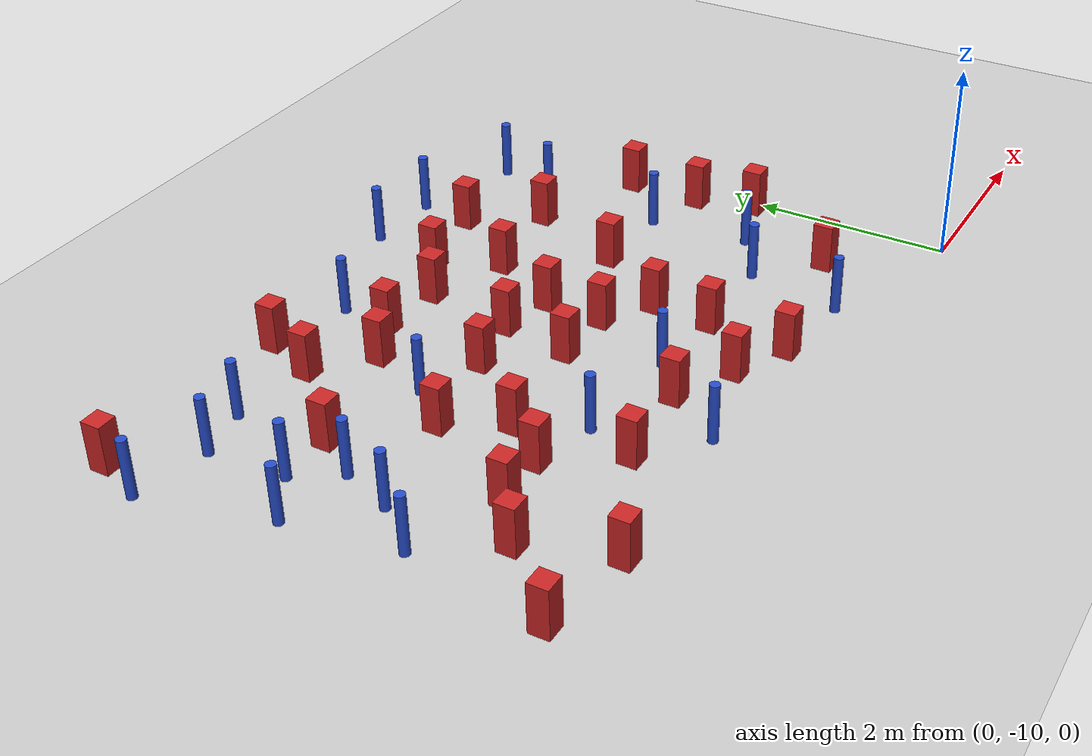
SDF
<sdf version="1.6">
 <world name="default">
  <model name="ground_plane">
   <static>1</static>
   <link name="link">
    <collision name="collision">
     <geometry><plane><normal>0 0 1</normal><size>100 100</size></plane></geometry>
     <surface><friction><ode><mu>100</mu><mu2>50</mu2></ode></friction></surface>
    </collision>
    <visual name="visual">
     <cast_shadows>0</cast_shadows>
     <geometry><plane><normal>0 0 1</normal><size>100 100</size></plane></geometry>
     <material>
      <ambient>1.0 1.0 1.0 1.0</ambient>
      <diffuse>0.8 0.8 0.8 1.0</diffuse>
      <specular>0.01 0.01 0.01 1.000000</specular>
     </material>
    </visual>
   </link>
  </model>
  <model name="square_post_obstacle1">
   <static>true</static>
   <pose>-6.61234218189 -9.25222904209 -6.11067671241e-07 -5.50515727128e-06 -8.79689657224e-07 2.37013304536e-05</pose>
   <link name="link">
    <pose>0 0 0.25 0 -0 0</pose>
    <inertial>
     <mass>100</mass>
     <inertia>
      <ixx>0.166667</ixx>
      <ixy>0</ixy>
      <ixz>0</ixz>
      <iyy>0.166667</iyy>
      <iyz>0</iyz>
      <izz>0.166667</izz>
     </inertia>
    </inertial>
    <collision name="collision"><geometry><box><size>.2 .2 .5</size></box></geometry></collision>
    <visual name="visual">
     <geometry><box><size>.2 .2 .5</size></box></geometry>
     <material>
      <script><name>Gazebo/Red</name><uri>file://media/materials/scripts/gazebo.material</uri></script>
     </material>
    </visual>
   </link>
  </model>
  <model name="square_post_obstacle4">
   <static>true</static>
   <pose>-3.96534316025 -6.98792957776 -6.11067671241e-07 -5.50515727128e-06 -8.79689657224e-07 2.37013304536e-05</pose>
   <link name="link">
    <pose>0 0 0.25 0 -0 0</pose>
    <inertial>
     <mass>100</mass>
     <inertia>
      <ixx>0.166667</ixx>
      <ixy>0</ixy>
      <ixz>0</ixz>
      <iyy>0.166667</iyy>
      <iyz>0</iyz>
      <izz>0.166667</izz>
     </inertia>
    </inertial>
    <collision name="collision"><geometry><box><size>.2 .2 .5</size></box></geometry></collision>
    <visual name="visual">
     <geometry><box><size>.2 .2 .5</size></box></geometry>
     <material>
      <script><name>Gazebo/Red</name><uri>file://media/materials/scripts/gazebo.material</uri></script>
     </material>
    </visual>
   </link>
  </model>
  <model name="pole_obstacle10">
   <static>true</static>
   <pose>-3.80866569778 -5.33983282003 -9.47619616065e-06 5.49618799738e-07 2.3631041406e-07 -1.55090534801e-07</pose>
   <link name="link">
    <pose>0 0 0.3 0 -0 0</pose>
    <inertial>
     <mass>1</mass>
     <inertia><ixx>0.145833</ixx><ixy>0</ixy><ixz>0</ixz><iyy>0.145833</iyy><iyz>0</iyz><izz>0.125</izz></inertia>
    </inertial>
    <collision name="collision">
     <geometry><cylinder><radius>0.05</radius><length>.6</length></cylinder></geometry>
    </collision>
    <visual name="visual">
     <geometry><cylinder><radius>0.05</radius><length>.6</length></cylinder></geometry>
     <material>
      <script><name>Gazebo/Blue</name><uri>file://media/materials/scripts/gazebo.material</uri></script>
     </material>
    </visual>
   </link>
  </model>
  <model name="square_post_obstacle9">
   <static>true</static>
   <pose>-2.40884904298 -6.25458285325 -6.11067671241e-07 -5.50515727128e-06 -8.79689657224e-07 2.37013304536e-05</pose>
   <link name="link">
    <pose>0 0 0.25 0 -0 0</pose>
    <inertial>
     <mass>100</mass>
     <inertia>
      <ixx>0.166667</ixx>
      <ixy>0</ixy>
      <ixz>0</ixz>
      <iyy>0.166667</iyy>
      <iyz>0</iyz>
      <izz>0.166667</izz>
     </inertia>
    </inertial>
    <collision name="collision"><geometry><box><size>.2 .2 .5</size></box></geometry></collision>
    <visual name="visual">
     <geometry><box><size>.2 .2 .5</size></box></geometry>
     <material>
      <script><name>Gazebo/Red</name><uri>file://media/materials/scripts/gazebo.material</uri></script>
     </material>
    </visual>
   </link>
  </model>
  <model name="pole_obstacle13">
   <static>true</static>
   <pose>-1.35421657662 -8.49732423744 -9.47619616065e-06 5.49618799737e-07 2.36310414046e-07 -1.55090534809e-07</pose>
   <link name="link">
    <pose>0 0 0.3 0 -0 0</pose>
    <inertial>
     <mass>1</mass>
     <inertia><ixx>0.145833</ixx><ixy>0</ixy><ixz>0</ixz><iyy>0.145833</iyy><iyz>0</iyz><izz>0.125</izz></inertia>
    </inertial>
    <collision name="collision">
     <geometry><cylinder><radius>0.05</radius><length>.6</length></cylinder></geometry>
    </collision>
    <visual name="visual">
     <geometry><cylinder><radius>0.05</radius><length>.6</length></cylinder></geometry>
     <material>
      <script><name>Gazebo/Blue</name><uri>file://media/materials/scripts/gazebo.material</uri></script>
     </material>
    </visual>
   </link>
  </model>
  <model name="pole_obstacle14">
   <static>true</static>
   <pose>-0.848660396784 -5.84715833143 -9.47619616065e-06 5.49618799737e-07 2.36310414065e-07 -1.55090534796e-07</pose>
   <link name="link">
    <pose>0 0 0.3 0 -0 0</pose>
    <inertial>
     <mass>1</mass>
     <inertia><ixx>0.145833</ixx><ixy>0</ixy><ixz>0</ixz><iyy>0.145833</iyy><iyz>0</iyz><izz>0.125</izz></inertia>
    </inertial>
    <collision name="collision">
     <geometry><cylinder><radius>0.05</radius><length>.6</length></cylinder></geometry>
    </collision>
    <visual name="visual">
     <geometry><cylinder><radius>0.05</radius><length>.6</length></cylinder></geometry>
     <material>
      <script><name>Gazebo/Blue</name><uri>file://media/materials/scripts/gazebo.material</uri></script>
     </material>
    </visual>
   </link>
  </model>
  <model name="square_post_obstacle18">
   <static>true</static>
   <pose>-2.97778106963 -9.07731967255 -6.11067671241e-07 -5.50515727128e-06 -8.79689657224e-07 2.37013304536e-05</pose>
   <link name="link">
    <pose>0 0 0.25 0 -0 0</pose>
    <inertial>
     <mass>100</mass>
     <inertia>
      <ixx>0.166667</ixx>
      <ixy>0</ixy>
      <ixz>0</ixz>
      <iyy>0.166667</iyy>
      <iyz>0</iyz>
      <izz>0.166667</izz>
     </inertia>
    </inertial>
    <collision name="collision"><geometry><box><size>.2 .2 .5</size></box></geometry></collision>
    <visual name="visual">
     <geometry><box><size>.2 .2 .5</size></box></geometry>
     <material>
      <script><name>Gazebo/Red</name><uri>file://media/materials/scripts/gazebo.material</uri></script>
     </material>
    </visual>
   </link>
  </model>
  <model name="square_post_obstacle19">
   <static>true</static>
   <pose>-2.33895949297 -7.9182587723 -6.11067671241e-07 -5.50515727128e-06 -8.79689657224e-07 2.37013304536e-05</pose>
   <link name="link">
    <pose>0 0 0.25 0 -0 0</pose>
    <inertial>
     <mass>100</mass>
     <inertia>
      <ixx>0.166667</ixx>
      <ixy>0</ixy>
      <ixz>0</ixz>
      <iyy>0.166667</iyy>
      <iyz>0</iyz>
      <izz>0.166667</izz>
     </inertia>
    </inertial>
    <collision name="collision"><geometry><box><size>.2 .2 .5</size></box></geometry></collision>
    <visual name="visual">
     <geometry><box><size>.2 .2 .5</size></box></geometry>
     <material>
      <script><name>Gazebo/Red</name><uri>file://media/materials/scripts/gazebo.material</uri></script>
     </material>
    </visual>
   </link>
  </model>
  <model name="square_post_obstacle46">
   <static>true</static>
   <pose>-3.45185126321 -7.57975687878 -6.11067671241e-07 -5.50515727128e-06 -8.79689657224e-07 2.37013304536e-05</pose>
   <link name="link">
    <pose>0 0 0.25 0 -0 0</pose>
    <inertial>
     <mass>100</mass>
     <inertia>
      <ixx>0.166667</ixx>
      <ixy>0</ixy>
      <ixz>0</ixz>
      <iyy>0.166667</iyy>
      <iyz>0</iyz>
      <izz>0.166667</izz>
     </inertia>
    </inertial>
    <collision name="collision"><geometry><box><size>.2 .2 .5</size></box></geometry></collision>
    <visual name="visual">
     <geometry><box><size>.2 .2 .5</size></box></geometry>
     <material>
      <script><name>Gazebo/Red</name><uri>file://media/materials/scripts/gazebo.material</uri></script>
     </material>
    </visual>
   </link>
  </model>
  <model name="square_post_obstacle53">
   <static>true</static>
   <pose>-4.61229892581 -5.12888289293 -6.11067671241e-07 -5.50515727128e-06 -8.79689657224e-07 2.37013304536e-05</pose>
   <link name="link">
    <pose>0 0 0.25 0 -0 0</pose>
    <inertial>
     <mass>100</mass>
     <inertia>
      <ixx>0.166667</ixx>
      <ixy>0</ixy>
      <ixz>0</ixz>
      <iyy>0.166667</iyy>
      <iyz>0</iyz>
      <izz>0.166667</izz>
     </inertia>
    </inertial>
    <collision name="collision"><geometry><box><size>.2 .2 .5</size></box></geometry></collision>
    <visual name="visual">
     <geometry><box><size>.2 .2 .5</size></box></geometry>
     <material>
      <script><name>Gazebo/Red</name><uri>file://media/materials/scripts/gazebo.material</uri></script>
     </material>
    </visual>
   </link>
  </model>
  <model name="square_post_obstacle59">
   <static>true</static>
   <pose>-4.3211310822 -6.11712307735 -6.11067671241e-07 -5.50515727128e-06 -8.79689657224e-07 2.37013304536e-05</pose>
   <link name="link">
    <pose>0 0 0.25 0 -0 0</pose>
    <inertial>
     <mass>100</mass>
     <inertia>
      <ixx>0.166667</ixx>
      <ixy>0</ixy>
      <ixz>0</ixz>
      <iyy>0.166667</iyy>
      <iyz>0</iyz>
      <izz>0.166667</izz>
     </inertia>
    </inertial>
    <collision name="collision"><geometry><box><size>.2 .2 .5</size></box></geometry></collision>
    <visual name="visual">
     <geometry><box><size>.2 .2 .5</size></box></geometry>
     <material>
      <script><name>Gazebo/Red</name><uri>file://media/materials/scripts/gazebo.material</uri></script>
     </material>
    </visual>
   </link>
  </model>
  <model name="pole_obstacle77">
   <static>true</static>
   <pose>-3.15374795623 -8.42657316093 -9.4761961606e-06 5.49618799729e-07 2.36310414e-07 -1.55090534824e-07</pose>
   <link name="link">
    <pose>0 0 0.3 0 -0 0</pose>
    <inertial>
     <mass>1</mass>
     <inertia><ixx>0.145833</ixx><ixy>0</ixy><ixz>0</ixz><iyy>0.145833</iyy><iyz>0</iyz><izz>0.125</izz></inertia>
    </inertial>
    <collision name="collision">
     <geometry><cylinder><radius>0.05</radius><length>.6</length></cylinder></geometry>
    </collision>
    <visual name="visual">
     <geometry><cylinder><radius>0.05</radius><length>.6</length></cylinder></geometry>
     <material>
      <script><name>Gazebo/Blue</name><uri>file://media/materials/scripts/gazebo.material</uri></script>
     </material>
    </visual>
   </link>
  </model>
  <model name="pole_obstacle78">
   <static>true</static>
   <pose>-2.52760220567 -4.82796453074 -9.47619616065e-06 5.49618799738e-07 2.3631041406e-07 -1.55090534801e-07</pose>
   <link name="link">
    <pose>0 0 0.3 0 -0 0</pose>
    <inertial>
     <mass>1</mass>
     <inertia><ixx>0.145833</ixx><ixy>0</ixy><ixz>0</ixz><iyy>0.145833</iyy><iyz>0</iyz><izz>0.125</izz></inertia>
    </inertial>
    <collision name="collision">
     <geometry><cylinder><radius>0.05</radius><length>.6</length></cylinder></geometry>
    </collision>
    <visual name="visual">
     <geometry><cylinder><radius>0.05</radius><length>.6</length></cylinder></geometry>
     <material>
      <script><name>Gazebo/Blue</name><uri>file://media/materials/scripts/gazebo.material</uri></script>
     </material>
    </visual>
   </link>
  </model>
  <model name="pole_obstacle87">
   <static>true</static>
   <pose>-6.04353501007 -7.39528748377 -9.47619616065e-06 5.49618799737e-07 2.36310414037e-07 -1.55090534814e-07</pose>
   <link name="link">
    <pose>0 0 0.3 0 -0 0</pose>
    <inertial>
     <mass>1</mass>
     <inertia><ixx>0.145833</ixx><ixy>0</ixy><ixz>0</ixz><iyy>0.145833</iyy><iyz>0</iyz><izz>0.125</izz></inertia>
    </inertial>
    <collision name="collision">
     <geometry><cylinder><radius>0.05</radius><length>.6</length></cylinder></geometry>
    </collision>
    <visual name="visual">
     <geometry><cylinder><radius>0.05</radius><length>.6</length></cylinder></geometry>
     <material>
      <script><name>Gazebo/Blue</name><uri>file://media/materials/scripts/gazebo.material</uri></script>
     </material>
    </visual>
   </link>
  </model>
  <model name="pole_obstacle88">
   <static>true</static>
   <pose>-4.57307497156 -6.73007637474 -9.47619616065e-06 5.49618799737e-07 2.36310414037e-07 -1.55090534814e-07</pose>
   <link name="link">
    <pose>0 0 0.3 0 -0 0</pose>
    <inertial>
     <mass>1</mass>
     <inertia><ixx>0.145833</ixx><ixy>0</ixy><ixz>0</ixz><iyy>0.145833</iyy><iyz>0</iyz><izz>0.125</izz></inertia>
    </inertial>
    <collision name="collision">
     <geometry><cylinder><radius>0.05</radius><length>.6</length></cylinder></geometry>
    </collision>
    <visual name="visual">
     <geometry><cylinder><radius>0.05</radius><length>.6</length></cylinder></geometry>
     <material>
      <script><name>Gazebo/Blue</name><uri>file://media/materials/scripts/gazebo.material</uri></script>
     </material>
    </visual>
   </link>
  </model>
  <model name="square_post_obstacle75">
   <static>true</static>
   <pose>-1.83153999859 -5.44681117138 -6.11067671241e-07 -5.50515727128e-06 -8.79689657224e-07 2.37013304536e-05</pose>
   <link name="link">
    <pose>0 0 0.25 0 -0 0</pose>
    <inertial>
     <mass>100</mass>
     <inertia>
      <ixx>0.166667</ixx>
      <ixy>0</ixy>
      <ixz>0</ixz>
      <iyy>0.166667</iyy>
      <iyz>0</iyz>
      <izz>0.166667</izz>
     </inertia>
    </inertial>
    <collision name="collision"><geometry><box><size>.2 .2 .5</size></box></geometry></collision>
    <visual name="visual">
     <geometry><box><size>.2 .2 .5</size></box></geometry>
     <material>
      <script><name>Gazebo/Red</name><uri>file://media/materials/scripts/gazebo.material</uri></script>
     </material>
    </visual>
   </link>
  </model>
  <model name="square_post_obstacle79">
   <static>true</static>
   <pose>-4.52518463151 -8.8526159317 -6.11067671241e-07 -5.50515727128e-06 -8.79689657224e-07 2.37013304536e-05</pose>
   <link name="link">
    <pose>0 0 0.25 0 -0 0</pose>
    <inertial>
     <mass>100</mass>
     <inertia>
      <ixx>0.166667</ixx>
      <ixy>0</ixy>
      <ixz>0</ixz>
      <iyy>0.166667</iyy>
      <iyz>0</iyz>
      <izz>0.166667</izz>
     </inertia>
    </inertial>
    <collision name="collision"><geometry><box><size>.2 .2 .5</size></box></geometry></collision>
    <visual name="visual">
     <geometry><box><size>.2 .2 .5</size></box></geometry>
     <material>
      <script><name>Gazebo/Red</name><uri>file://media/materials/scripts/gazebo.material</uri></script>
     </material>
    </visual>
   </link>
  </model>
  <model name="square_post_obstacle83">
   <static>true</static>
   <pose>-2.81070772369 -7.6019172526 -6.11067671241e-07 -5.50515727128e-06 -8.79689657224e-07 2.37013304536e-05</pose>
   <link name="link">
    <pose>0 0 0.25 0 -0 0</pose>
    <inertial>
     <mass>100</mass>
     <inertia>
      <ixx>0.166667</ixx>
      <ixy>0</ixy>
      <ixz>0</ixz>
      <iyy>0.166667</iyy>
      <iyz>0</iyz>
      <izz>0.166667</izz>
     </inertia>
    </inertial>
    <collision name="collision"><geometry><box><size>.2 .2 .5</size></box></geometry></collision>
    <visual name="visual">
     <geometry><box><size>.2 .2 .5</size></box></geometry>
     <material>
      <script><name>Gazebo/Red</name><uri>file://media/materials/scripts/gazebo.material</uri></script>
     </material>
    </visual>
   </link>
  </model>
  <model name="pole_obstacle93">
   <static>true</static>
   <pose>-6.12355215341 -6.44398744161 -9.47619616065e-06 5.49618799737e-07 2.36310414037e-07 -1.55090534814e-07</pose>
   <link name="link">
    <pose>0 0 0.3 0 -0 0</pose>
    <inertial>
     <mass>1</mass>
     <inertia><ixx>0.145833</ixx><ixy>0</ixy><ixz>0</ixz><iyy>0.145833</iyy><iyz>0</iyz><izz>0.125</izz></inertia>
    </inertial>
    <collision name="collision">
     <geometry><cylinder><radius>0.05</radius><length>.6</length></cylinder></geometry>
    </collision>
    <visual name="visual">
     <geometry><cylinder><radius>0.05</radius><length>.6</length></cylinder></geometry>
     <material>
      <script><name>Gazebo/Blue</name><uri>file://media/materials/scripts/gazebo.material</uri></script>
     </material>
    </visual>
   </link>
  </model>
  <model name="pole_obstacle94">
   <static>true</static>
   <pose>-5.64105046254 -5.53741407935 -9.47619616065e-06 5.49618799737e-07 2.36310414037e-07 -1.55090534814e-07</pose>
   <link name="link">
    <pose>0 0 0.3 0 -0 0</pose>
    <inertial>
     <mass>1</mass>
     <inertia><ixx>0.145833</ixx><ixy>0</ixy><ixz>0</ixz><iyy>0.145833</iyy><iyz>0</iyz><izz>0.125</izz></inertia>
    </inertial>
    <collision name="collision">
     <geometry><cylinder><radius>0.05</radius><length>.6</length></cylinder></geometry>
    </collision>
    <visual name="visual">
     <geometry><cylinder><radius>0.05</radius><length>.6</length></cylinder></geometry>
     <material>
      <script><name>Gazebo/Blue</name><uri>file://media/materials/scripts/gazebo.material</uri></script>
     </material>
    </visual>
   </link>
  </model>
  <model name="square_post_obstacle92">
   <static>true</static>
   <pose>-4.96538003735 -8.17409566798 -6.11067671241e-07 -5.50515727128e-06 -8.79689657224e-07 2.37013304536e-05</pose>
   <link name="link">
    <pose>0 0 0.25 0 -0 0</pose>
    <inertial>
     <mass>100</mass>
     <inertia>
      <ixx>0.166667</ixx>
      <ixy>0</ixy>
      <ixz>0</ixz>
      <iyy>0.166667</iyy>
      <iyz>0</iyz>
      <izz>0.166667</izz>
     </inertia>
    </inertial>
    <collision name="collision"><geometry><box><size>.2 .2 .5</size></box></geometry></collision>
    <visual name="visual">
     <geometry><box><size>.2 .2 .5</size></box></geometry>
     <material>
      <script><name>Gazebo/Red</name><uri>file://media/materials/scripts/gazebo.material</uri></script>
     </material>
    </visual>
   </link>
  </model>
  <model name="pole_obstacle103">
   <static>true</static>
   <pose>-6.92358410325 -5.48874517351 -9.47619616065e-06 5.49618799737e-07 2.36310414037e-07 -1.55090534814e-07</pose>
   <link name="link">
    <pose>0 0 0.3 0 -0 0</pose>
    <inertial>
     <mass>1</mass>
     <inertia><ixx>0.145833</ixx><ixy>0</ixy><ixz>0</ixz><iyy>0.145833</iyy><iyz>0</iyz><izz>0.125</izz></inertia>
    </inertial>
    <collision name="collision">
     <geometry><cylinder><radius>0.05</radius><length>.6</length></cylinder></geometry>
    </collision>
    <visual name="visual">
     <geometry><cylinder><radius>0.05</radius><length>.6</length></cylinder></geometry>
     <material>
      <script><name>Gazebo/Blue</name><uri>file://media/materials/scripts/gazebo.material</uri></script>
     </material>
    </visual>
   </link>
  </model>
  <model name="square_post_obstacle102">
   <static>true</static>
   <pose>-0.138084623768 -7.95216123171 -6.11067671241e-07 -5.50515727128e-06 -8.79689657224e-07 2.37013304536e-05</pose>
   <link name="link">
    <pose>0 0 0.25 0 -0 0</pose>
    <inertial>
     <mass>100</mass>
     <inertia>
      <ixx>0.166667</ixx>
      <ixy>0</ixy>
      <ixz>0</ixz>
      <iyy>0.166667</iyy>
      <iyz>0</iyz>
      <izz>0.166667</izz>
     </inertia>
    </inertial>
    <collision name="collision"><geometry><box><size>.2 .2 .5</size></box></geometry></collision>
    <visual name="visual">
     <geometry><box><size>.2 .2 .5</size></box></geometry>
     <material>
      <script><name>Gazebo/Red</name><uri>file://media/materials/scripts/gazebo.material</uri></script>
     </material>
    </visual>
   </link>
  </model>
  <model name="pole_obstacle107">
   <static>true</static>
   <pose>-1.53596561828 -9.45985353317 -9.47619616065e-06 5.49618799737e-07 2.36310414046e-07 -1.55090534809e-07</pose>
   <link name="link">
    <pose>0 0 0.3 0 -0 0</pose>
    <inertial>
     <mass>1</mass>
     <inertia><ixx>0.145833</ixx><ixy>0</ixy><ixz>0</ixz><iyy>0.145833</iyy><iyz>0</iyz><izz>0.125</izz></inertia>
    </inertial>
    <collision name="collision">
     <geometry><cylinder><radius>0.05</radius><length>.6</length></cylinder></geometry>
    </collision>
    <visual name="visual">
     <geometry><cylinder><radius>0.05</radius><length>.6</length></cylinder></geometry>
     <material>
      <script><name>Gazebo/Blue</name><uri>file://media/materials/scripts/gazebo.material</uri></script>
     </material>
    </visual>
   </link>
  </model>
  <model name="square_post_obstacle118">
   <static>true</static>
   <pose>-0.280496071034 -6.59993422484 -6.11067671241e-07 -5.50515727128e-06 -8.79689657224e-07 2.37013304536e-05</pose>
   <link name="link">
    <pose>0 0 0.25 0 -0 0</pose>
    <inertial>
     <mass>100</mass>
     <inertia>
      <ixx>0.166667</ixx>
      <ixy>0</ixy>
      <ixz>0</ixz>
      <iyy>0.166667</iyy>
      <iyz>0</iyz>
      <izz>0.166667</izz>
     </inertia>
    </inertial>
    <collision name="collision"><geometry><box><size>.2 .2 .5</size></box></geometry></collision>
    <visual name="visual">
     <geometry><box><size>.2 .2 .5</size></box></geometry>
     <material>
      <script><name>Gazebo/Red</name><uri>file://media/materials/scripts/gazebo.material</uri></script>
     </material>
    </visual>
   </link>
  </model>
  <model name="pole_obstacle123">
   <static>true</static>
   <pose>-0.794722284269 -8.16159902728 -9.47619616065e-06 5.49618799737e-07 2.36310414038e-07 -1.55090534813e-07</pose>
   <link name="link">
    <pose>0 0 0.3 0 -0 0</pose>
    <inertial>
     <mass>1</mass>
     <inertia><ixx>0.145833</ixx><ixy>0</ixy><ixz>0</ixz><iyy>0.145833</iyy><iyz>0</iyz><izz>0.125</izz></inertia>
    </inertial>
    <collision name="collision">
     <geometry><cylinder><radius>0.05</radius><length>.6</length></cylinder></geometry>
    </collision>
    <visual name="visual">
     <geometry><cylinder><radius>0.05</radius><length>.6</length></cylinder></geometry>
     <material>
      <script><name>Gazebo/Blue</name><uri>file://media/materials/scripts/gazebo.material</uri></script>
     </material>
    </visual>
   </link>
  </model>
  <model name="square_post_obstacle125">
   <static>true</static>
   <pose>-1.78407655611 -7.12074924177 -6.11067671241e-07 -5.50515727128e-06 -8.79689657224e-07 2.37013304536e-05</pose>
   <link name="link">
    <pose>0 0 0.25 0 -0 0</pose>
    <inertial>
     <mass>100</mass>
     <inertia>
      <ixx>0.166667</ixx>
      <ixy>0</ixy>
      <ixz>0</ixz>
      <iyy>0.166667</iyy>
      <iyz>0</iyz>
      <izz>0.166667</izz>
     </inertia>
    </inertial>
    <collision name="collision"><geometry><box><size>.2 .2 .5</size></box></geometry></collision>
    <visual name="visual">
     <geometry><box><size>.2 .2 .5</size></box></geometry>
     <material>
      <script><name>Gazebo/Red</name><uri>file://media/materials/scripts/gazebo.material</uri></script>
     </material>
    </visual>
   </link>
  </model>
  <model name="square_post_obstacle127">
   <static>true</static>
   <pose>-3.19227242565 -5.94334889432 -6.11067671241e-07 -5.50515727128e-06 -8.79689657224e-07 2.37013304536e-05</pose>
   <link name="link">
    <pose>0 0 0.25 0 -0 0</pose>
    <inertial>
     <mass>100</mass>
     <inertia>
      <ixx>0.166667</ixx>
      <ixy>0</ixy>
      <ixz>0</ixz>
      <iyy>0.166667</iyy>
      <iyz>0</iyz>
      <izz>0.166667</izz>
     </inertia>
    </inertial>
    <collision name="collision"><geometry><box><size>.2 .2 .5</size></box></geometry></collision>
    <visual name="visual">
     <geometry><box><size>.2 .2 .5</size></box></geometry>
     <material>
      <script><name>Gazebo/Red</name><uri>file://media/materials/scripts/gazebo.material</uri></script>
     </material>
    </visual>
   </link>
  </model>
  <model name="square_post_obstacle129">
   <static>true</static>
   <pose>-4.83028359431 -5.66963571946 -6.11067671241e-07 -5.50515727128e-06 -8.79689657224e-07 2.37013304536e-05</pose>
   <link name="link">
    <pose>0 0 0.25 0 -0 0</pose>
    <inertial>
     <mass>100</mass>
     <inertia>
      <ixx>0.166667</ixx>
      <ixy>0</ixy>
      <ixz>0</ixz>
      <iyy>0.166667</iyy>
      <iyz>0</iyz>
      <izz>0.166667</izz>
     </inertia>
    </inertial>
    <collision name="collision"><geometry><box><size>.2 .2 .5</size></box></geometry></collision>
    <visual name="visual">
     <geometry><box><size>.2 .2 .5</size></box></geometry>
     <material>
      <script><name>Gazebo/Red</name><uri>file://media/materials/scripts/gazebo.material</uri></script>
     </material>
    </visual>
   </link>
  </model>
  <model name="square_post_obstacle135">
   <static>true</static>
   <pose>-5.57221936462 -6.45512611732 -6.11067671241e-07 -5.50515727128e-06 -8.79689657224e-07 2.37013304536e-05</pose>
   <link name="link">
    <pose>0 0 0.25 0 -0 0</pose>
    <inertial>
     <mass>100</mass>
     <inertia>
      <ixx>0.166667</ixx>
      <ixy>0</ixy>
      <ixz>0</ixz>
      <iyy>0.166667</iyy>
      <iyz>0</iyz>
      <izz>0.166667</izz>
     </inertia>
    </inertial>
    <collision name="collision"><geometry><box><size>.2 .2 .5</size></box></geometry></collision>
    <visual name="visual">
     <geometry><box><size>.2 .2 .5</size></box></geometry>
     <material>
      <script><name>Gazebo/Red</name><uri>file://media/materials/scripts/gazebo.material</uri></script>
     </material>
    </visual>
   </link>
  </model>
  <model name="pole_obstacle141">
   <static>true</static>
   <pose>-0.889944849668 -7.14407926955 -9.47619616065e-06 5.49618799737e-07 2.36310414065e-07 -1.55090534796e-07</pose>
   <link name="link">
    <pose>0 0 0.3 0 -0 0</pose>
    <inertial>
     <mass>1</mass>
     <inertia><ixx>0.145833</ixx><ixy>0</ixy><ixz>0</ixz><iyy>0.145833</iyy><iyz>0</iyz><izz>0.125</izz></inertia>
    </inertial>
    <collision name="collision">
     <geometry><cylinder><radius>0.05</radius><length>.6</length></cylinder></geometry>
    </collision>
    <visual name="visual">
     <geometry><cylinder><radius>0.05</radius><length>.6</length></cylinder></geometry>
     <material>
      <script><name>Gazebo/Blue</name><uri>file://media/materials/scripts/gazebo.material</uri></script>
     </material>
    </visual>
   </link>
  </model>
  <model name="square_post_obstacle139">
   <static>true</static>
   <pose>-5.96325892573 -8.55888621068 -6.11067671241e-07 -5.50515727128e-06 -8.79689657224e-07 2.37013304536e-05</pose>
   <link name="link">
    <pose>0 0 0.25 0 -0 0</pose>
    <inertial>
     <mass>100</mass>
     <inertia>
      <ixx>0.166667</ixx>
      <ixy>0</ixy>
      <ixz>0</ixz>
      <iyy>0.166667</iyy>
      <iyz>0</iyz>
      <izz>0.166667</izz>
     </inertia>
    </inertial>
    <collision name="collision"><geometry><box><size>.2 .2 .5</size></box></geometry></collision>
    <visual name="visual">
     <geometry><box><size>.2 .2 .5</size></box></geometry>
     <material>
      <script><name>Gazebo/Red</name><uri>file://media/materials/scripts/gazebo.material</uri></script>
     </material>
    </visual>
   </link>
  </model>
  <model name="square_post_obstacle143">
   <static>true</static>
   <pose>-5.675572906 -9.41373974964 -6.11067671241e-07 -5.50515727128e-06 -8.79689657224e-07 2.37013304536e-05</pose>
   <link name="link">
    <pose>0 0 0.25 0 -0 0</pose>
    <inertial>
     <mass>100</mass>
     <inertia>
      <ixx>0.166667</ixx>
      <ixy>0</ixy>
      <ixz>0</ixz>
      <iyy>0.166667</iyy>
      <iyz>0</iyz>
      <izz>0.166667</izz>
     </inertia>
    </inertial>
    <collision name="collision"><geometry><box><size>.2 .2 .5</size></box></geometry></collision>
    <visual name="visual">
     <geometry><box><size>.2 .2 .5</size></box></geometry>
     <material>
      <script><name>Gazebo/Red</name><uri>file://media/materials/scripts/gazebo.material</uri></script>
     </material>
    </visual>
   </link>
  </model>
  <model name="square_post_obstacle152">
   <static>true</static>
   <pose>-3.87282848013 -5.87933657876 -6.11067671241e-07 -5.50515727128e-06 -8.79689657224e-07 2.37013304536e-05</pose>
   <link name="link">
    <pose>0 0 0.25 0 -0 0</pose>
    <inertial>
     <mass>100</mass>
     <inertia>
      <ixx>0.166667</ixx>
      <ixy>0</ixy>
      <ixz>0</ixz>
      <iyy>0.166667</iyy>
      <iyz>0</iyz>
      <izz>0.166667</izz>
     </inertia>
    </inertial>
    <collision name="collision"><geometry><box><size>.2 .2 .5</size></box></geometry></collision>
    <visual name="visual">
     <geometry><box><size>.2 .2 .5</size></box></geometry>
     <material>
      <script><name>Gazebo/Red</name><uri>file://media/materials/scripts/gazebo.material</uri></script>
     </material>
    </visual>
   </link>
  </model>
  <model name="square_post_obstacle153">
   <static>true</static>
   <pose>-1.37987802556 -6.11480084332 -6.11067671241e-07 -5.50515727128e-06 -8.79689657224e-07 2.37013304536e-05</pose>
   <link name="link">
    <pose>0 0 0.25 0 -0 0</pose>
    <inertial>
     <mass>100</mass>
     <inertia>
      <ixx>0.166667</ixx>
      <ixy>0</ixy>
      <ixz>0</ixz>
      <iyy>0.166667</iyy>
      <iyz>0</iyz>
      <izz>0.166667</izz>
     </inertia>
    </inertial>
    <collision name="collision"><geometry><box><size>.2 .2 .5</size></box></geometry></collision>
    <visual name="visual">
     <geometry><box><size>.2 .2 .5</size></box></geometry>
     <material>
      <script><name>Gazebo/Red</name><uri>file://media/materials/scripts/gazebo.material</uri></script>
     </material>
    </visual>
   </link>
  </model>
  <model name="square_post_obstacle154">
   <static>true</static>
   <pose>-4.93200149386 -7.1643421528 -6.11067671241e-07 -5.50515727128e-06 -8.79689657224e-07 2.37013304536e-05</pose>
   <link name="link">
    <pose>0 0 0.25 0 -0 0</pose>
    <inertial>
     <mass>100</mass>
     <inertia>
      <ixx>0.166667</ixx>
      <ixy>0</ixy>
      <ixz>0</ixz>
      <iyy>0.166667</iyy>
      <iyz>0</iyz>
      <izz>0.166667</izz>
     </inertia>
    </inertial>
    <collision name="collision"><geometry><box><size>.2 .2 .5</size></box></geometry></collision>
    <visual name="visual">
     <geometry><box><size>.2 .2 .5</size></box></geometry>
     <material>
      <script><name>Gazebo/Red</name><uri>file://media/materials/scripts/gazebo.material</uri></script>
     </material>
    </visual>
   </link>
  </model>
  <model name="square_post_obstacle157">
   <static>true</static>
   <pose>-0.82357247306 -9.04548392454 -6.11067671241e-07 -5.50515727128e-06 -8.79689657224e-07 2.37013304536e-05</pose>
   <link name="link">
    <pose>0 0 0.25 0 -0 0</pose>
    <inertial>
     <mass>100</mass>
     <inertia>
      <ixx>0.166667</ixx>
      <ixy>0</ixy>
      <ixz>0</ixz>
      <iyy>0.166667</iyy>
      <iyz>0</iyz>
      <izz>0.166667</izz>
     </inertia>
    </inertial>
    <collision name="collision"><geometry><box><size>.2 .2 .5</size></box></geometry></collision>
    <visual name="visual">
     <geometry><box><size>.2 .2 .5</size></box></geometry>
     <material>
      <script><name>Gazebo/Red</name><uri>file://media/materials/scripts/gazebo.material</uri></script>
     </material>
    </visual>
   </link>
  </model>
  <model name="square_post_obstacle159">
   <static>true</static>
   <pose>-2.37741352712 -8.53190171113 -6.11067671241e-07 -5.50515727128e-06 -8.79689657224e-07 2.37013304536e-05</pose>
   <link name="link">
    <pose>0 0 0.25 0 -0 0</pose>
    <inertial>
     <mass>100</mass>
     <inertia>
      <ixx>0.166667</ixx>
      <ixy>0</ixy>
      <ixz>0</ixz>
      <iyy>0.166667</iyy>
      <iyz>0</iyz>
      <izz>0.166667</izz>
     </inertia>
    </inertial>
    <collision name="collision"><geometry><box><size>.2 .2 .5</size></box></geometry></collision>
    <visual name="visual">
     <geometry><box><size>.2 .2 .5</size></box></geometry>
     <material>
      <script><name>Gazebo/Red</name><uri>file://media/materials/scripts/gazebo.material</uri></script>
     </material>
    </visual>
   </link>
  </model>
  <model name="pole_obstacle167">
   <static>true</static>
   <pose>-0.687056399713 -5.22343361991 -9.47619616065e-06 5.49618799737e-07 2.36310414065e-07 -1.55090534796e-07</pose>
   <link name="link">
    <pose>0 0 0.3 0 -0 0</pose>
    <inertial>
     <mass>1</mass>
     <inertia><ixx>0.145833</ixx><ixy>0</ixy><ixz>0</ixz><iyy>0.145833</iyy><iyz>0</iyz><izz>0.125</izz></inertia>
    </inertial>
    <collision name="collision">
     <geometry><cylinder><radius>0.05</radius><length>.6</length></cylinder></geometry>
    </collision>
    <visual name="visual">
     <geometry><cylinder><radius>0.05</radius><length>.6</length></cylinder></geometry>
     <material>
      <script><name>Gazebo/Blue</name><uri>file://media/materials/scripts/gazebo.material</uri></script>
     </material>
    </visual>
   </link>
  </model>
  <model name="pole_obstacle170">
   <static>true</static>
   <pose>-6.17401904938 -5.65535281007 -9.47619616065e-06 5.49618799737e-07 2.36310414037e-07 -1.55090534814e-07</pose>
   <link name="link">
    <pose>0 0 0.3 0 -0 0</pose>
    <inertial>
     <mass>1</mass>
     <inertia><ixx>0.145833</ixx><ixy>0</ixy><ixz>0</ixz><iyy>0.145833</iyy><iyz>0</iyz><izz>0.125</izz></inertia>
    </inertial>
    <collision name="collision">
     <geometry><cylinder><radius>0.05</radius><length>.6</length></cylinder></geometry>
    </collision>
    <visual name="visual">
     <geometry><cylinder><radius>0.05</radius><length>.6</length></cylinder></geometry>
     <material>
      <script><name>Gazebo/Blue</name><uri>file://media/materials/scripts/gazebo.material</uri></script>
     </material>
    </visual>
   </link>
  </model>
  <model name="square_post_obstacle174">
   <static>true</static>
   <pose>-5.50798258852 -8.20844264057 -6.11067671241e-07 -5.50515727128e-06 -8.79689657224e-07 2.37013304536e-05</pose>
   <link name="link">
    <pose>0 0 0.25 0 -0 0</pose>
    <inertial>
     <mass>100</mass>
     <inertia>
      <ixx>0.166667</ixx>
      <ixy>0</ixy>
      <ixz>0</ixz>
      <iyy>0.166667</iyy>
      <iyz>0</iyz>
      <izz>0.166667</izz>
     </inertia>
    </inertial>
    <collision name="collision"><geometry><box><size>.2 .2 .5</size></box></geometry></collision>
    <visual name="visual">
     <geometry><box><size>.2 .2 .5</size></box></geometry>
     <material>
      <script><name>Gazebo/Red</name><uri>file://media/materials/scripts/gazebo.material</uri></script>
     </material>
    </visual>
   </link>
  </model>
  <model name="square_post_obstacle177">
   <static>true</static>
   <pose>-2.69074768155 -5.61171588281 -6.11067671241e-07 -5.50515727128e-06 -8.79689657224e-07 2.37013304536e-05</pose>
   <link name="link">
    <pose>0 0 0.25 0 -0 0</pose>
    <inertial>
     <mass>100</mass>
     <inertia>
      <ixx>0.166667</ixx>
      <ixy>0</ixy>
      <ixz>0</ixz>
      <iyy>0.166667</iyy>
      <iyz>0</iyz>
      <izz>0.166667</izz>
     </inertia>
    </inertial>
    <collision name="collision"><geometry><box><size>.2 .2 .5</size></box></geometry></collision>
    <visual name="visual">
     <geometry><box><size>.2 .2 .5</size></box></geometry>
     <material>
      <script><name>Gazebo/Red</name><uri>file://media/materials/scripts/gazebo.material</uri></script>
     </material>
    </visual>
   </link>
  </model>
  <model name="pole_obstacle182">
   <static>true</static>
   <pose>-4.32822681243 -8.3431894992 -9.47619616065e-06 5.49618799737e-07 2.36310414065e-07 -1.55090534796e-07</pose>
   <link name="link">
    <pose>0 0 0.3 0 -0 0</pose>
    <inertial>
     <mass>1</mass>
     <inertia><ixx>0.145833</ixx><ixy>0</ixy><ixz>0</ixz><iyy>0.145833</iyy><iyz>0</iyz><izz>0.125</izz></inertia>
    </inertial>
    <collision name="collision">
     <geometry><cylinder><radius>0.05</radius><length>.6</length></cylinder></geometry>
    </collision>
    <visual name="visual">
     <geometry><cylinder><radius>0.05</radius><length>.6</length></cylinder></geometry>
     <material>
      <script><name>Gazebo/Blue</name><uri>file://media/materials/scripts/gazebo.material</uri></script>
     </material>
    </visual>
   </link>
  </model>
  <model name="square_post_obstacle182">
   <static>true</static>
   <pose>-2.78927487556 -6.99335704745 -6.11067671241e-07 -5.50515727128e-06 -8.79689657224e-07 2.37013304536e-05</pose>
   <link name="link">
    <pose>0 0 0.25 0 -0 0</pose>
    <inertial>
     <mass>100</mass>
     <inertia>
      <ixx>0.166667</ixx>
      <ixy>0</ixy>
      <ixz>0</ixz>
      <iyy>0.166667</iyy>
      <iyz>0</iyz>
      <izz>0.166667</izz>
     </inertia>
    </inertial>
    <collision name="collision"><geometry><box><size>.2 .2 .5</size></box></geometry></collision>
    <visual name="visual">
     <geometry><box><size>.2 .2 .5</size></box></geometry>
     <material>
      <script><name>Gazebo/Red</name><uri>file://media/materials/scripts/gazebo.material</uri></script>
     </material>
    </visual>
   </link>
  </model>
  <model name="square_post_obstacle189">
   <static>true</static>
   <pose>-0.287756689192 -7.36180675516 -6.11067671241e-07 -5.50515727128e-06 -8.79689657224e-07 2.37013304536e-05</pose>
   <link name="link">
    <pose>0 0 0.25 0 -0 0</pose>
    <inertial>
     <mass>100</mass>
     <inertia>
      <ixx>0.166667</ixx>
      <ixy>0</ixy>
      <ixz>0</ixz>
      <iyy>0.166667</iyy>
      <iyz>0</iyz>
      <izz>0.166667</izz>
     </inertia>
    </inertial>
    <collision name="collision"><geometry><box><size>.2 .2 .5</size></box></geometry></collision>
    <visual name="visual">
     <geometry><box><size>.2 .2 .5</size></box></geometry>
     <material>
      <script><name>Gazebo/Red</name><uri>file://media/materials/scripts/gazebo.material</uri></script>
     </material>
    </visual>
   </link>
  </model>
  <model name="square_post_obstacle191">
   <static>true</static>
   <pose>-4.62108520302 -7.73869242042 -6.11067671241e-07 -5.50515727128e-06 -8.79689657224e-07 2.37013304536e-05</pose>
   <link name="link">
    <pose>0 0 0.25 0 -0 0</pose>
    <inertial>
     <mass>100</mass>
     <inertia>
      <ixx>0.166667</ixx>
      <ixy>0</ixy>
      <ixz>0</ixz>
      <iyy>0.166667</iyy>
      <iyz>0</iyz>
      <izz>0.166667</izz>
     </inertia>
    </inertial>
    <collision name="collision"><geometry><box><size>.2 .2 .5</size></box></geometry></collision>
    <visual name="visual">
     <geometry><box><size>.2 .2 .5</size></box></geometry>
     <material>
      <script><name>Gazebo/Red</name><uri>file://media/materials/scripts/gazebo.material</uri></script>
     </material>
    </visual>
   </link>
  </model>
  <model name="square_post_obstacle192">
   <static>true</static>
   <pose>-3.58038668454 -8.76710936025 -6.11067671241e-07 -5.50515727128e-06 -8.79689657224e-07 2.37013304536e-05</pose>
   <link name="link">
    <pose>0 0 0.25 0 -0 0</pose>
    <inertial>
     <mass>100</mass>
     <inertia>
      <ixx>0.166667</ixx>
      <ixy>0</ixy>
      <ixz>0</ixz>
      <iyy>0.166667</iyy>
      <iyz>0</iyz>
      <izz>0.166667</izz>
     </inertia>
    </inertial>
    <collision name="collision"><geometry><box><size>.2 .2 .5</size></box></geometry></collision>
    <visual name="visual">
     <geometry><box><size>.2 .2 .5</size></box></geometry>
     <material>
      <script><name>Gazebo/Red</name><uri>file://media/materials/scripts/gazebo.material</uri></script>
     </material>
    </visual>
   </link>
  </model>
  <model name="pole_obstacle190">
   <static>true</static>
   <pose>-6.4186739974 -7.85077221949 -9.47619616065e-06 5.49618799737e-07 2.36310414037e-07 -1.55090534814e-07</pose>
   <link name="link">
    <pose>0 0 0.3 0 -0 0</pose>
    <inertial>
     <mass>1</mass>
     <inertia><ixx>0.145833</ixx><ixy>0</ixy><ixz>0</ixz><iyy>0.145833</iyy><iyz>0</iyz><izz>0.125</izz></inertia>
    </inertial>
    <collision name="collision">
     <geometry><cylinder><radius>0.05</radius><length>.6</length></cylinder></geometry>
    </collision>
    <visual name="visual">
     <geometry><cylinder><radius>0.05</radius><length>.6</length></cylinder></geometry>
     <material>
      <script><name>Gazebo/Blue</name><uri>file://media/materials/scripts/gazebo.material</uri></script>
     </material>
    </visual>
   </link>
  </model>
  <model name="square_post_obstacle203">
   <static>true</static>
   <pose>-2.43096316195 -9.35035033149 -6.11067671241e-07 -5.50515727128e-06 -8.79689657224e-07 2.37013304536e-05</pose>
   <link name="link">
    <pose>0 0 0.25 0 -0 0</pose>
    <inertial>
     <mass>100</mass>
     <inertia>
      <ixx>0.166667</ixx>
      <ixy>0</ixy>
      <ixz>0</ixz>
      <iyy>0.166667</iyy>
      <iyz>0</iyz>
      <izz>0.166667</izz>
     </inertia>
    </inertial>
    <collision name="collision"><geometry><box><size>.2 .2 .5</size></box></geometry></collision>
    <visual name="visual">
     <geometry><box><size>.2 .2 .5</size></box></geometry>
     <material>
      <script><name>Gazebo/Red</name><uri>file://media/materials/scripts/gazebo.material</uri></script>
     </material>
    </visual>
   </link>
  </model>
  <model name="pole_obstacle194">
   <static>true</static>
   <pose>-3.95519546857 -9.33708404436 -9.47619616065e-06 5.49618799737e-07 2.36310414047e-07 -1.55090534808e-07</pose>
   <link name="link">
    <pose>0 0 0.3 0 -0 0</pose>
    <inertial>
     <mass>1</mass>
     <inertia><ixx>0.145833</ixx><ixy>0</ixy><ixz>0</ixz><iyy>0.145833</iyy><iyz>0</iyz><izz>0.125</izz></inertia>
    </inertial>
    <collision name="collision">
     <geometry><cylinder><radius>0.05</radius><length>.6</length></cylinder></geometry>
    </collision>
    <visual name="visual">
     <geometry><cylinder><radius>0.05</radius><length>.6</length></cylinder></geometry>
     <material>
      <script><name>Gazebo/Blue</name><uri>file://media/materials/scripts/gazebo.material</uri></script>
     </material>
    </visual>
   </link>
  </model>
  <model name="pole_obstacle198">
   <static>true</static>
   <pose>-1.75601887139 -4.86923983864 -9.47619616065e-06 5.49618799737e-07 2.36310414061e-07 -1.550905348e-07</pose>
   <link name="link">
    <pose>0 0 0.3 0 -0 0</pose>
    <inertial>
     <mass>1</mass>
     <inertia><ixx>0.145833</ixx><ixy>0</ixy><ixz>0</ixz><iyy>0.145833</iyy><iyz>0</iyz><izz>0.125</izz></inertia>
    </inertial>
    <collision name="collision">
     <geometry><cylinder><radius>0.05</radius><length>.6</length></cylinder></geometry>
    </collision>
    <visual name="visual">
     <geometry><cylinder><radius>0.05</radius><length>.6</length></cylinder></geometry>
     <material>
      <script><name>Gazebo/Blue</name><uri>file://media/materials/scripts/gazebo.material</uri></script>
     </material>
    </visual>
   </link>
  </model>
  <model name="square_post_obstacle209">
   <static>true</static>
   <pose>-6.72102208534 -5.02815809276 -6.11067671241e-07 -5.50515727128e-06 -8.79689657224e-07 2.37013304536e-05</pose>
   <link name="link">
    <pose>0 0 0.25 0 -0 0</pose>
    <inertial>
     <mass>100</mass>
     <inertia>
      <ixx>0.166667</ixx>
      <ixy>0</ixy>
      <ixz>0</ixz>
      <iyy>0.166667</iyy>
      <iyz>0</iyz>
      <izz>0.166667</izz>
     </inertia>
    </inertial>
    <collision name="collision"><geometry><box><size>.2 .2 .5</size></box></geometry></collision>
    <visual name="visual">
     <geometry><box><size>.2 .2 .5</size></box></geometry>
     <material>
      <script><name>Gazebo/Red</name><uri>file://media/materials/scripts/gazebo.material</uri></script>
     </material>
    </visual>
   </link>
  </model>
  <model name="square_post_obstacle210">
   <static>true</static>
   <pose>-3.33767146056 -6.86904298402 -6.11067671241e-07 -5.50515727128e-06 -8.79689657224e-07 2.37013304536e-05</pose>
   <link name="link">
    <pose>0 0 0.25 0 -0 0</pose>
    <inertial>
     <mass>100</mass>
     <inertia>
      <ixx>0.166667</ixx>
      <ixy>0</ixy>
      <ixz>0</ixz>
      <iyy>0.166667</iyy>
      <iyz>0</iyz>
      <izz>0.166667</izz>
     </inertia>
    </inertial>
    <collision name="collision"><geometry><box><size>.2 .2 .5</size></box></geometry></collision>
    <visual name="visual">
     <geometry><box><size>.2 .2 .5</size></box></geometry>
     <material>
      <script><name>Gazebo/Red</name><uri>file://media/materials/scripts/gazebo.material</uri></script>
     </material>
    </visual>
   </link>
  </model>
  <model name="pole_obstacle213">
   <static>true</static>
   <pose>-5.84958434068 -6.87466271203 -9.47619616065e-06 5.49618799737e-07 2.36310414037e-07 -1.55090534814e-07</pose>
   <link name="link">
    <pose>0 0 0.3 0 -0 0</pose>
    <inertial>
     <mass>1</mass>
     <inertia><ixx>0.145833</ixx><ixy>0</ixy><ixz>0</ixz><iyy>0.145833</iyy><iyz>0</iyz><izz>0.125</izz></inertia>
    </inertial>
    <collision name="collision">
     <geometry><cylinder><radius>0.05</radius><length>.6</length></cylinder></geometry>
    </collision>
    <visual name="visual">
     <geometry><cylinder><radius>0.05</radius><length>.6</length></cylinder></geometry>
     <material>
      <script><name>Gazebo/Blue</name><uri>file://media/materials/scripts/gazebo.material</uri></script>
     </material>
    </visual>
   </link>
  </model>
  <model name="pole_obstacle216">
   <static>true</static>
   <pose>-6.60206274699 -6.74743924014 -9.47619616065e-06 5.49618799737e-07 2.36310414037e-07 -1.55090534814e-07</pose>
   <link name="link">
    <pose>0 0 0.3 0 -0 0</pose>
    <inertial>
     <mass>1</mass>
     <inertia><ixx>0.145833</ixx><ixy>0</ixy><ixz>0</ixz><iyy>0.145833</iyy><iyz>0</iyz><izz>0.125</izz></inertia>
    </inertial>
    <collision name="collision">
     <geometry><cylinder><radius>0.05</radius><length>.6</length></cylinder></geometry>
    </collision>
    <visual name="visual">
     <geometry><cylinder><radius>0.05</radius><length>.6</length></cylinder></geometry>
     <material>
      <script><name>Gazebo/Blue</name><uri>file://media/materials/scripts/gazebo.material</uri></script>
     </material>
    </visual>
   </link>
  </model>
 </world>
</sdf>
